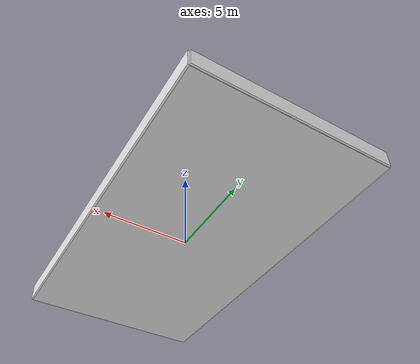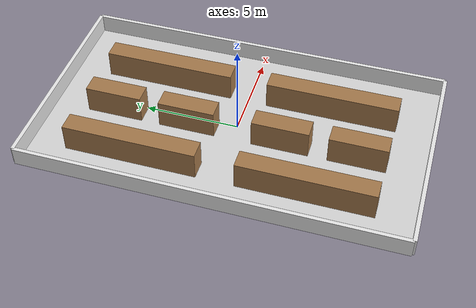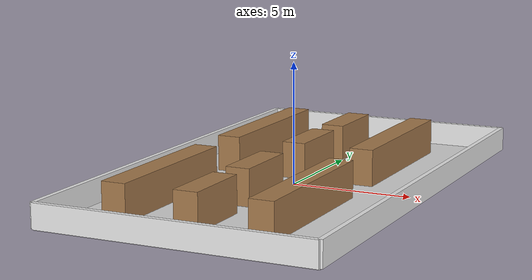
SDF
<?xml version="1.0" ?>
<sdf version="1.8">
  <model name="warehouse_world">

    <static>true</static>
    <pose>0 0 0 0 0 1.57079632679</pose>

    <link name="warehouse_link">

      <!-- FLOOR -->
      <collision name="floor_col">
        <pose>0 0 -0.025 0 0 0</pose>
        <geometry>
          <box>
            <size>20 11.25 0.05</size>
          </box>
        </geometry>
      </collision>

      <visual name="floor_vis">
        <pose>0 0 -0.025 0 0 0</pose>
        <geometry>
          <box>
            <size>20 11.25 0.05</size>
          </box>
        </geometry>
        <material>
          <ambient>0.80 0.80 0.80 1</ambient>
          <diffuse>0.85 0.85 0.85 1</diffuse>
          <specular>0.10 0.10 0.10 1</specular>
        </material>
      </visual>

      <!-- NORTH WALL -->
      <collision name="wall_north">
        <pose>0 5.625 0.5 0 0 0</pose>
        <geometry>
          <box>
            <size>20 0.2 1</size>
          </box>
        </geometry>
      </collision>

      <visual name="wall_north_vis">
        <pose>0 5.625 0.5 0 0 0</pose>
        <geometry>
          <box>
            <size>20 0.2 1</size>
          </box>
        </geometry>
        <material>
          <ambient>0.86 0.86 0.86 1</ambient>
          <diffuse>0.92 0.92 0.92 1</diffuse>
          <specular>0.05 0.05 0.05 1</specular>
        </material>
      </visual>

      <!-- SOUTH WALL -->
      <collision name="wall_south">
        <pose>0 -5.625 0.5 0 0 0</pose>
        <geometry>
          <box>
            <size>20 0.2 1</size>
          </box>
        </geometry>
      </collision>

      <visual name="wall_south_vis">
        <pose>0 -5.625 0.5 0 0 0</pose>
        <geometry>
          <box>
            <size>20 0.2 1</size>
          </box>
        </geometry>
        <material>
          <ambient>0.86 0.86 0.86 1</ambient>
          <diffuse>0.92 0.92 0.92 1</diffuse>
          <specular>0.05 0.05 0.05 1</specular>
        </material>
      </visual>

      <!-- WEST WALL -->
      <collision name="wall_west">
        <pose>-10 0 0.5 0 0 0</pose>
        <geometry>
          <box>
            <size>0.2 11.25 1</size>
          </box>
        </geometry>
      </collision>

      <visual name="wall_west_vis">
        <pose>-10 0 0.5 0 0 0</pose>
        <geometry>
          <box>
            <size>0.2 11.25 1</size>
          </box>
        </geometry>
        <material>
          <ambient>0.86 0.86 0.86 1</ambient>
          <diffuse>0.92 0.92 0.92 1</diffuse>
          <specular>0.05 0.05 0.05 1</specular>
        </material>
      </visual>

      <!-- EAST WALL -->
      <collision name="wall_east">
        <pose>10 0 0.5 0 0 0</pose>
        <geometry>
          <box>
            <size>0.2 11.25 1</size>
          </box>
        </geometry>
      </collision>

      <visual name="wall_east_vis">
        <pose>10 0 0.5 0 0 0</pose>
        <geometry>
          <box>
            <size>0.2 11.25 1</size>
          </box>
        </geometry>
        <material>
          <ambient>0.86 0.86 0.86 1</ambient>
          <diffuse>0.92 0.92 0.92 1</diffuse>
          <specular>0.05 0.05 0.05 1</specular>
        </material>
      </visual>

      <!-- SHELF 1: углы (1,-4)-(8,-3) -->
      <collision name="shelf1">
        <pose>4.5 -2.5 0.75 0 0 0</pose>
        <geometry>
          <box>
            <size>7 1 1.5</size>
          </box>
        </geometry>
      </collision>

      <visual name="shelf1_vis">
        <pose>4.5 -2.5 0.75 0 0 0</pose>
        <geometry>
          <box>
            <size>7 1 1.5</size>
          </box>
        </geometry>
        <material>
          <ambient>0.55 0.40 0.25 1</ambient>
          <diffuse>0.65 0.48 0.30 1</diffuse>
          <specular>0.10 0.10 0.10 1</specular>
        </material>
      </visual>

      <!-- SHELF 2: углы (5,-1)-(8,0) -->
      <collision name="shelf2">
        <pose>6.5 0.5 0.75 0 0 0</pose>
        <geometry>
          <box>
            <size>3 1 1.5</size>
          </box>
        </geometry>
      </collision>

      <visual name="shelf2_vis">
        <pose>6.5 0.5 0.75 0 0 0</pose>
        <geometry>
          <box>
            <size>3 1 1.5</size>
          </box>
        </geometry>
        <material>
          <ambient>0.55 0.40 0.25 1</ambient>
          <diffuse>0.65 0.48 0.30 1</diffuse>
          <specular>0.10 0.10 0.10 1</specular>
        </material>
      </visual>

      <!-- SHELF 3: углы (1,-1)-(4,0) -->
      <collision name="shelf3">
        <pose>2.5 0.5 0.75 0 0 0</pose>
        <geometry>
          <box>
            <size>3 1 1.5</size>
          </box>
        </geometry>
      </collision>

      <visual name="shelf3_vis">
        <pose>2.5 0.5 0.75 0 0 0</pose>
        <geometry>
          <box>
            <size>3 1 1.5</size>
          </box>
        </geometry>
        <material>
          <ambient>0.55 0.40 0.25 1</ambient>
          <diffuse>0.65 0.48 0.30 1</diffuse>
          <specular>0.10 0.10 0.10 1</specular>
        </material>
      </visual>

      <!-- SHELF 4: углы (1,2)-(8,3) -->
      <collision name="shelf4">
        <pose>4.5 3.5 0.75 0 0 0</pose>
        <geometry>
          <box>
            <size>7 1 1.5</size>
          </box>
        </geometry>
      </collision>

      <visual name="shelf4_vis">
        <pose>4.5 3.5 0.75 0 0 0</pose>
        <geometry>
          <box>
            <size>7 1 1.5</size>
          </box>
        </geometry>
        <material>
          <ambient>0.55 0.40 0.25 1</ambient>
          <diffuse>0.65 0.48 0.30 1</diffuse>
          <specular>0.10 0.10 0.10 1</specular>
        </material>
      </visual>

      <!-- SHELF 5 (зеркальная к 1): углы (-8,-4)-(-1,-3) -->
      <collision name="shelf5">
        <pose>-4.5 -2.5 0.75 0 0 0</pose>
        <geometry>
          <box>
            <size>7 1 1.5</size>
          </box>
        </geometry>
      </collision>

      <visual name="shelf5_vis">
        <pose>-4.5 -2.5 0.75 0 0 0</pose>
        <geometry>
          <box>
            <size>7 1 1.5</size>
          </box>
        </geometry>
        <material>
          <ambient>0.55 0.40 0.25 1</ambient>
          <diffuse>0.65 0.48 0.30 1</diffuse>
          <specular>0.10 0.10 0.10 1</specular>
        </material>
      </visual>

      <!-- SHELF 6 (зеркальная к 2): углы (-8,-1)-(-5,0) -->
      <collision name="shelf6">
        <pose>-6.5 0.5 0.75 0 0 0</pose>
        <geometry>
          <box>
            <size>3 1 1.5</size>
          </box>
        </geometry>
      </collision>

      <visual name="shelf6_vis">
        <pose>-6.5 0.5 0.75 0 0 0</pose>
        <geometry>
          <box>
            <size>3 1 1.5</size>
          </box>
        </geometry>
        <material>
          <ambient>0.55 0.40 0.25 1</ambient>
          <diffuse>0.65 0.48 0.30 1</diffuse>
          <specular>0.10 0.10 0.10 1</specular>
        </material>
      </visual>

      <!-- SHELF 7 (зеркальная к 3): углы (-4,-1)-(-1,0) -->
      <collision name="shelf7">
        <pose>-2.5 0.5 0.75 0 0 0</pose>
        <geometry>
          <box>
            <size>3 1 1.5</size>
          </box>
        </geometry>
      </collision>

      <visual name="shelf7_vis">
        <pose>-2.5 0.5 0.75 0 0 0</pose>
        <geometry>
          <box>
            <size>3 1 1.5</size>
          </box>
        </geometry>
        <material>
          <ambient>0.55 0.40 0.25 1</ambient>
          <diffuse>0.65 0.48 0.30 1</diffuse>
          <specular>0.10 0.10 0.10 1</specular>
        </material>
      </visual>

      <!-- SHELF 8 (зеркальная к 4): углы (-8,2)-(-1,3) -->
      <collision name="shelf8">
        <pose>-4.5 3.5 0.75 0 0 0</pose>
        <geometry>
          <box>
            <size>7 1 1.5</size>
          </box>
        </geometry>
      </collision>

      <visual name="shelf8_vis">
        <pose>-4.5 3.5 0.75 0 0 0</pose>
        <geometry>
          <box>
            <size>7 1 1.5</size>
          </box>
        </geometry>
        <material>
          <ambient>0.55 0.40 0.25 1</ambient>
          <diffuse>0.65 0.48 0.30 1</diffuse>
          <specular>0.10 0.10 0.10 1</specular>
        </material>
      </visual>

    </link>
  </model>
</sdf>
